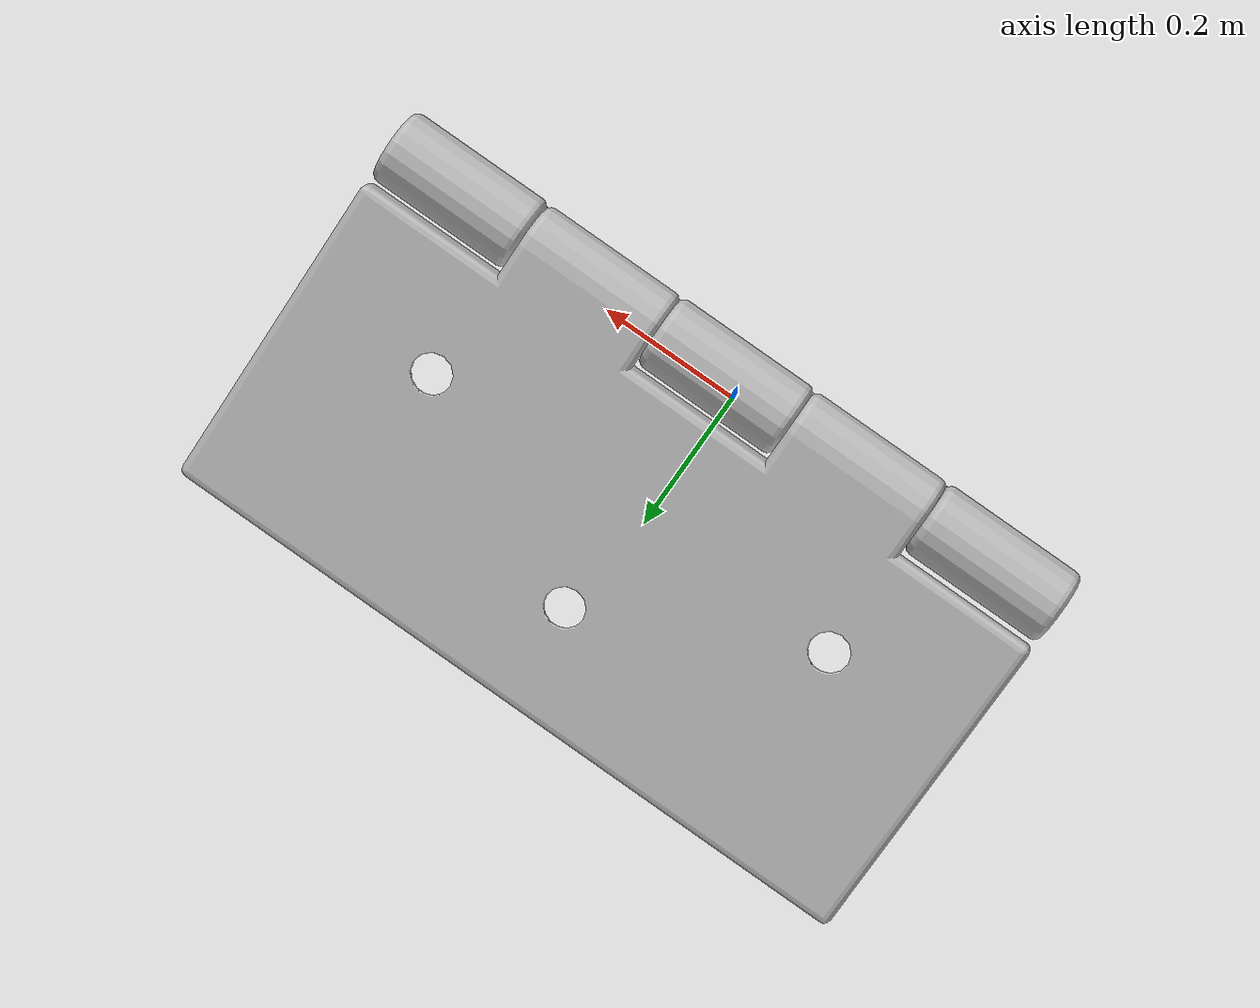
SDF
<?xml version="1.0" ?>
<sdf version='1.4'>
  <model name='hinge'>
    <link name='base_link'>
      <pose>0 0 0 0 -0 0</pose>
      <inertial>
        <pose>0.0018612 0.0028669 0.0027918 0 -0 0</pose>
        <mass>0.13081</mass>
        <inertia>
          <ixx>3.5032e-05</ixx>
          <ixy>-4.1704e-08</ixy>
          <ixz>4.377e-09</ixz>
          <iyy>0.00011772</iyy>
          <iyz>-2.0137e-06</iyz>
          <izz>0.00015165</izz>
        </inertia>
      </inertial>
      <collision name='base_link_collision'>
        <pose>0 0 0 0 -0 0</pose>
        <geometry>
          <mesh>
            <scale>10 10 10</scale>
            <uri>model://hinge/meshes/base_link.dae</uri>
          </mesh>
        </geometry>
      </collision>
      <visual name='base_link_visual'>
        <pose>0 0 0 0 -0 0</pose>
        <geometry>
          <mesh>
            <scale>10 10 10</scale>
            <uri>model://hinge/meshes/base_link.dae</uri>
          </mesh>
        </geometry>
      </visual>
      <velocity_decay>
        <linear>0</linear>
        <angular>0</angular>
      </velocity_decay>
    </link>
    <link name='link_1'>
      <pose>0 0 0.234256 0.32455 -6.8094e-16 -3.14159</pose>
      <inertial>
        <pose>-0.0018882 -0.023112 0.0029924 0 -0 0</pose>
        <mass>0.12092</mass>
        <inertia>
          <ixx>3.0054e-05</ixx>
          <ixy>-2.3603e-08</ixy>
          <ixz>1.0075e-09</ixz>
          <iyy>9.3473e-05</iyy>
          <iyz>-1.4491e-06</iyz>
          <izz>0.00012271</izz>
        </inertia>
      </inertial>
      <collision name='link_1_collision'>
        <pose>0 0 0 0 -0 0</pose>
        <geometry>
          <mesh>
            <scale>10 10 10</scale>
            <uri>model://hinge/meshes/link_1.dae</uri>
          </mesh>
        </geometry>
      </collision>
      <visual name='link_1_visual'>
        <pose>0 0 0 0 -0 0</pose>
        <geometry>
          <mesh>
            <scale>10 10 10</scale>
            <uri>model://hinge/meshes/link_1.dae</uri>
          </mesh>
        </geometry>
      </visual>
      <velocity_decay>
        <linear>0</linear>
        <angular>0</angular>
      </velocity_decay>
    </link>
    <joint name='joint_1' type='revolute'>
      <child>link_1</child>
      <parent>base_link</parent>
      <axis>
        <xyz>-1 0 0</xyz>
        <limit>
          <lower>-1.2462</lower>
          <upper>1.2462</upper>
          <effort>0</effort>
          <velocity>0</velocity>
        </limit>
        <dynamics/>
      </axis>
    </joint>
     <joint name = "my_mass_joint" type="prismatic">
        <parent>world</parent>
          <child>base_link</child>
          <axis>
            <xyz>0 0 1</xyz>
          </axis>
      </joint>
      <plugin name="mass_joint" filename="libMassJoint.so" />
  </model>
</sdf>
